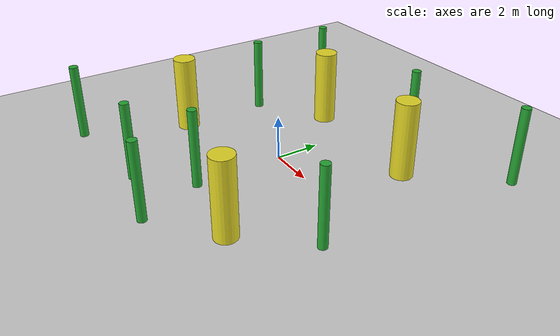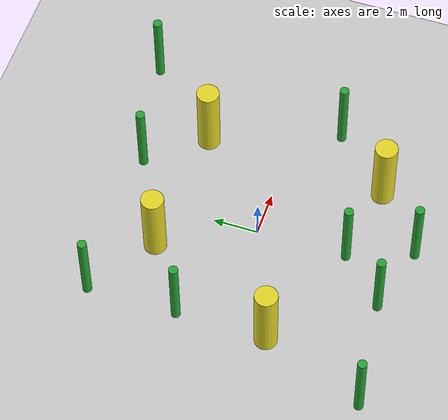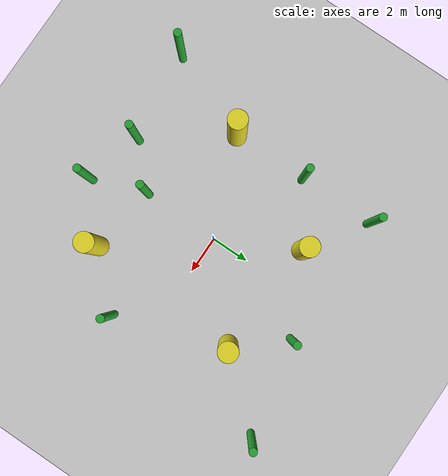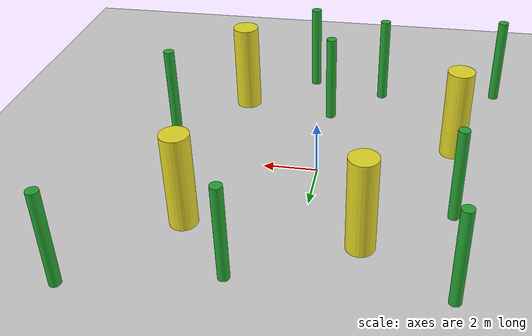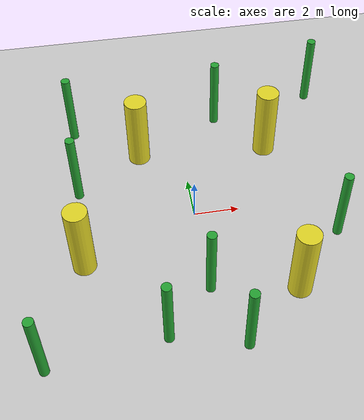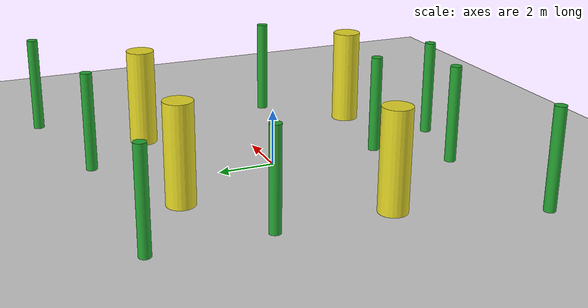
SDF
<?xml version="1.0" ?>
<sdf version="1.5">
  <world name="default">

    <!-- 初始视角 -->
    <gui fullscreen='0'>
      <camera name='user_camera'>
        <pose>0.0 -26.0 10.0 0 0.35 1.5</pose>
        <view_controller>orbit</view_controller>
      </camera>
    </gui>

    <physics name='default_physics' default='0' type='ode'>
      <gravity>0 0 -9.8066</gravity>
      <ode>
        <solver>
          <type>quick</type>
          <iters>150</iters>
          <sor>1.3</sor>
          <use_dynamic_moi_rescaling>0</use_dynamic_moi_rescaling>
        </solver>
        <constraints>
          <cfm>0.00001</cfm>
          <erp>0.2</erp>
          <contact_max_correcting_vel>1000</contact_max_correcting_vel>
          <contact_surface_layer>0.01</contact_surface_layer>
        </constraints>
      </ode>
      <max_step_size>0.004</max_step_size>
      <real_time_factor>1000.0</real_time_factor>
      <real_time_update_rate>250</real_time_update_rate>
      <magnetic_field>6.0e-6 2.3e-5 -4.2e-5</magnetic_field>
    </physics>
    <!-- Testing the automatic population of objects -->

    <!-- A global light source -->
    <include>
      <uri>model://sun</uri>
    </include>

    <!-- A ground plane -->
    <model name='ground_plane'>
      <static>1</static>
      <link name='link'>
        <collision name='collision'>
          <geometry>
            <plane>
              <normal>0 0 1</normal>
              <size>100 100</size>
            </plane>
          </geometry>
          <surface>
            <friction>
              <ode>
                <mu>100</mu>
                <mu2>50</mu2>
              </ode>
              <torsional>
                <ode/>
              </torsional>
            </friction>
            <bounce/>
            <contact>
              <ode/>
            </contact>
          </surface>
          <max_contacts>10</max_contacts>
        </collision>
        <visual name='visual'>
          <cast_shadows>0</cast_shadows>
          <geometry>
            <plane>
              <normal>0 0 1</normal>
              <size>100 100</size>
            </plane>
          </geometry>
          <material>
            <script>
              <uri>file://media/materials/scripts/gazebo.material</uri>
              <name>Gazebo/Grey</name>
            </script>
          </material>
        </visual>
        <velocity_decay>
          <linear>0</linear>
          <angular>0</angular>
        </velocity_decay>
        <self_collide>0</self_collide>
        <kinematic>0</kinematic>
        <gravity>1</gravity>
      </link>
    </model>

    <model name='pillar_m_1'>
      <include>
        <uri>model://pillar_m</uri>
        <pose> 4 3.6 1.75 0 0 0 </pose>
      </include>
    </model>
    <model name='pillar_m_2'>
      <include>
        <uri>model://pillar_m</uri>
        <pose>3.6 -4.6 1.75 0 0 0</pose>
      </include>
    </model>
    <model name='pillar_m_3'>
      <include>
        <uri>model://pillar_m</uri>
        <pose>-2 4 1.75 0 0 0</pose>
      </include>
    </model>
    <model name='pillar_m_4'>
      <include>
        <uri>model://pillar_m</uri>
        <pose>-5 -2 1.75 0 0 0</pose>
      </include>
    </model>
    <model name='pillar_s_1'>
      <include>
        <uri>model://pillar_s</uri>
        <pose>2 6 1.75 0 0 0</pose>
      </include>
    </model>
    <model name='pillar_s_2'>
      <include>
        <uri>model://pillar_s</uri>
        <pose>7 7 1.75 0 0 0</pose>
      </include>
    </model>
    <model name='pillar_s_3'>
      <include>
        <uri>model://pillar_s</uri>
        <pose>6 -2 1.75 0 0 0</pose>
      </include>
    </model>
    <model name='pillar_s_4'>
      <include>
        <uri>model://pillar_s</uri>
        <pose>1 -6.8 1.75 0 0 0</pose>
      </include>
    </model>
    <model name='pillar_s_5'>
      <include>
        <uri>model://pillar_s</uri>
        <pose>0 -4 1.75 0 0 0</pose>
      </include>
    </model>
    <model name='pillar_s_6'>
      <include>
        <uri>model://pillar_s</uri>
        <pose>-2 -6 1.75 0 0 0</pose>
      </include>
    </model>
    <model name='pillar_s_7'>
      <include>
        <uri>model://pillar_s</uri>
        <pose>-6.8 -6.6 1.75 0 0 0</pose>
      </include>
    </model>
    <model name='pillar_s_8'>
      <include>
        <uri>model://pillar_s</uri>
        <pose>-5 2 1.75 0 0 0</pose>
      </include>
    </model>
    <model name='pillar_s_9'>
      <include>
        <uri>model://pillar_s</uri>
        <pose>-5 6 1.75 0 0 0</pose>
      </include>
    </model>
  </world>
</sdf>

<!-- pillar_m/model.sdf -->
<sdf version='1.6'>
  <model name='pillar_m'>
    <link name='link'>
      <inertial>
        <mass>1000</mass>
        <pose frame=''>0 0 0 0 -0 0</pose>
      </inertial>
      <self_collide>0</self_collide>
      <enable_wind>0</enable_wind>
      <kinematic>0</kinematic>
      <pose frame=''>0 0 0 0 -0 0</pose>
      <gravity>1</gravity>
      <visual name='visual'>
        <geometry>
          <cylinder>
            <radius>0.5</radius>
            <length>3.5</length>
          </cylinder>
        </geometry>
        <material>
          <script>
            <name>Gazebo/Yellow</name>
            <uri>file://media/materials/scripts/gazebo.material</uri>
          </script>
          <shader type='pixel'>
            <normal_map>__default__</normal_map>
          </shader>
          <ambient>0.988 0.914 0.31 1</ambient>
          <diffuse>0.7 0.7 0.7 1</diffuse>
          <specular>0.01 0.01 0.01 1</specular>
          <emissive>0 0 0 1</emissive>
        </material>
        <pose frame=''>0 0 0 0 -0 0</pose>
        <transparency>0</transparency>
        <cast_shadows>1</cast_shadows>
      </visual>
      <collision name='collision'>
        <laser_retro>0</laser_retro>
        <max_contacts>10</max_contacts>
        <pose frame=''>0 0 0 0 -0 0</pose>
        <geometry>
          <cylinder>
            <radius>0.5</radius>
            <length>3.5</length>
          </cylinder>
        </geometry>
      </collision>
    </link>
    <static>0</static>
    <allow_auto_disable>1</allow_auto_disable>
  </model>
</sdf>

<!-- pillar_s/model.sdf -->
<sdf version='1.6'>
  <model name='pillar_s'>
    <link name='link'>
      <inertial>
        <mass>1000</mass>
        <pose frame=''>0 0 0 0 -0 0</pose>
      </inertial>
      <self_collide>0</self_collide>
      <enable_wind>0</enable_wind>
      <kinematic>0</kinematic>
      <pose frame=''>0 0 0 0 -0 0</pose>
      <gravity>1</gravity>
      <visual name='visual'>
        <geometry>
          <cylinder>
            <radius>0.2</radius>
            <length>3.5</length>
          </cylinder>
        </geometry>
        <material>
          <script>
            <name>Gazebo/Green</name>
            <uri>file://media/materials/scripts/gazebo.material</uri>
          </script>
          <shader type='pixel'>
            <normal_map>__default__</normal_map>
          </shader>
          <ambient>0. 0.914 0. 1</ambient>
          <diffuse>0.7 0.7 0.7 1</diffuse>
          <specular>0.01 0.01 0.01 1</specular>
          <emissive>0 0 0 1</emissive>
        </material>
        <pose frame=''>0 0 0 0 -0 0</pose>
        <transparency>0</transparency>
        <cast_shadows>1</cast_shadows>
      </visual>
      <collision name='collision'>
        <laser_retro>0</laser_retro>
        <max_contacts>10</max_contacts>
        <pose frame=''>0 0 0 0 -0 0</pose>
        <geometry>
          <cylinder>
            <radius>0.2</radius>
            <length>3.5</length>
          </cylinder>
        </geometry>
      </collision>
    </link>
    <static>0</static>
    <allow_auto_disable>1</allow_auto_disable>
  </model>
</sdf>
